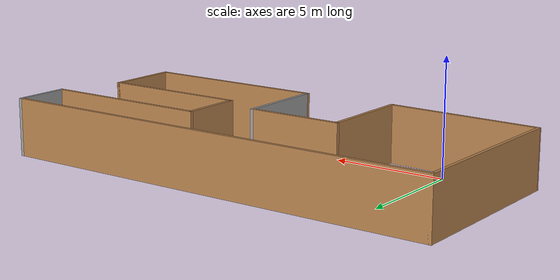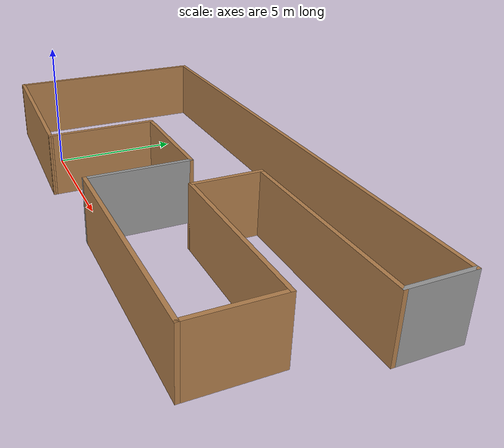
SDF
<?xml version='1.0'?>
<sdf version='1.6'>
  <model name='office'>
    <pose frame=''>6.28389 3.19889 0 0 -0 0</pose>
    <link name='Wall_0'>
      <collision name='Wall_0_Collision'>
        <geometry>
          <box>
            <size>8.25 0.15 2.5</size>
          </box>
        </geometry>
        <pose frame=''>0 0 1.25 0 -0 0</pose>
      </collision>
      <visual name='Wall_0_Visual'>
        <pose frame=''>0 0 1.25 0 -0 0</pose>
        <geometry>
          <box>
            <size>8.25 0.15 2.5</size>
          </box>
        </geometry>
        <material>
          <script>
            <uri>file://media/materials/scripts/gazebo.material</uri>
            <name>Gazebo/Wood</name>
          </script>
          <ambient>1 1 1 1</ambient>
        </material>
        <meta>
          <layer>0</layer>
        </meta>
      </visual>
      <pose frame=''>-9.92389 0.10111 0 0 -0 1.5708</pose>
    </link>
    <link name='Wall_1'>
      <collision name='Wall_1_Collision'>
        <geometry>
          <box>
            <size>20 0.15 2.5</size>
          </box>
        </geometry>
        <pose frame=''>0 0 1.25 0 -0 0</pose>
      </collision>
      <visual name='Wall_1_Visual'>
        <pose frame=''>0 0 1.25 0 -0 0</pose>
        <geometry>
          <box>
            <size>20 0.15 2.5</size>
          </box>
        </geometry>
        <material>
          <script>
            <uri>file://media/materials/scripts/gazebo.material</uri>
            <name>Gazebo/Wood</name>
          </script>
          <ambient>1 1 1 1</ambient>
        </material>
        <meta>
          <layer>0</layer>
        </meta>
      </visual>
      <pose frame=''>0.001111 4.15111 0 0 -0 0</pose>
    </link>
    <link name='Wall_10'>
      <collision name='Wall_10_Collision'>
        <geometry>
          <box>
            <size>4.25 0.15 2.5</size>
          </box>
        </geometry>
        <pose frame=''>0 0 1.25 0 -0 0</pose>
      </collision>
      <visual name='Wall_10_Visual'>
        <pose frame=''>0 0 1.25 0 -0 0</pose>
        <geometry>
          <box>
            <size>4.25 0.15 2.5</size>
          </box>
        </geometry>
        <material>
          <script>
            <uri>file://media/materials/scripts/gazebo.material</uri>
            <name>Gazebo/Wood</name>
          </script>
          <ambient>1 1 1 1</ambient>
        </material>
        <meta>
          <layer>0</layer>
        </meta>
      </visual>
      <pose frame=''>-3.27389 -2.09889 0 0 0 -1.5708</pose>
    </link>
    <link name='Wall_11'>
      <collision name='Wall_11_Collision'>
        <geometry>
          <box>
            <size>6.80301 0.15 2.5</size>
          </box>
        </geometry>
        <pose frame=''>0 0 1.25 0 -0 0</pose>
      </collision>
      <visual name='Wall_11_Visual'>
        <pose frame=''>0 0 1.25 0 -0 0</pose>
        <geometry>
          <box>
            <size>6.80301 0.15 2.5</size>
          </box>
        </geometry>
        <material>
          <script>
            <uri>file://media/materials/scripts/gazebo.material</uri>
            <name>Gazebo/Wood</name>
          </script>
          <ambient>1 1 1 1</ambient>
        </material>
        <meta>
          <layer>0</layer>
        </meta>
      </visual>
      <pose frame=''>-6.59889 -4.04889 0 0 -0 3.11153</pose>
    </link>
    <link name='Wall_2'>
      <collision name='Wall_2_Collision'>
        <geometry>
          <box>
            <size>2.5 0.15 2.5</size>
          </box>
        </geometry>
        <pose frame=''>0 0 1.25 0 -0 0</pose>
      </collision>
      <visual name='Wall_2_Visual'>
        <pose frame=''>0 0 1.25 0 -0 0</pose>
        <geometry>
          <box>
            <size>2.5 0.15 2.5</size>
          </box>
        </geometry>
        <material>
          <script>
            <uri>file://media/materials/scripts/gazebo.material</uri>
            <name>Gazebo/Grey</name>
          </script>
          <ambient>1 1 1 1</ambient>
        </material>
        <meta>
          <layer>0</layer>
        </meta>
      </visual>
      <pose frame=''>9.92611 2.97611 0 0 0 -1.5708</pose>
    </link>
    <link name='Wall_3'>
      <collision name='Wall_3_Collision'>
        <geometry>
          <box>
            <size>7.5 0.15 2.5</size>
          </box>
        </geometry>
        <pose frame=''>0 0 1.25 0 -0 0</pose>
      </collision>
      <visual name='Wall_3_Visual'>
        <pose frame=''>0 0 1.25 0 -0 0</pose>
        <geometry>
          <box>
            <size>7.5 0.15 2.5</size>
          </box>
        </geometry>
        <material>
          <script>
            <uri>file://media/materials/scripts/gazebo.material</uri>
            <name>Gazebo/Wood</name>
          </script>
          <ambient>1 1 1 1</ambient>
        </material>
        <meta>
          <layer>0</layer>
        </meta>
      </visual>
      <pose frame=''>6.25111 1.80111 0 0 -0 3.14159</pose>
    </link>
    <link name='Wall_4'>
      <collision name='Wall_4_Collision'>
        <geometry>
          <box>
            <size>2.75 0.15 2.5</size>
          </box>
        </geometry>
        <pose frame=''>0 0 1.25 0 -0 0</pose>
      </collision>
      <visual name='Wall_4_Visual'>
        <pose frame=''>0 0 1.25 0 -0 0</pose>
        <geometry>
          <box>
            <size>2.75 0.15 2.5</size>
          </box>
        </geometry>
        <material>
          <script>
            <uri>file://media/materials/scripts/gazebo.material</uri>
            <name>Gazebo/Wood</name>
          </script>
          <ambient>1 1 1 1</ambient>
        </material>
        <meta>
          <layer>0</layer>
        </meta>
      </visual>
      <pose frame=''>2.57611 0.50111 0 0 0 -1.5708</pose>
    </link>
    <link name='Wall_5'>
      <collision name='Wall_5_Collision'>
        <geometry>
          <box>
            <size>6.5 0.15 2.5</size>
          </box>
        </geometry>
        <pose frame=''>0 0 1.25 0 -0 0</pose>
      </collision>
      <visual name='Wall_5_Visual'>
        <pose frame=''>0 0 1.25 0 -0 0</pose>
        <geometry>
          <box>
            <size>6.5 0.15 2.5</size>
          </box>
        </geometry>
        <material>
          <script>
            <uri>file://media/materials/scripts/gazebo.material</uri>
            <name>Gazebo/Wood</name>
          </script>
          <ambient>1 1 1 1</ambient>
        </material>
        <meta>
          <layer>0</layer>
        </meta>
      </visual>
      <pose frame=''>5.75111 -0.79889 0 0 -0 0</pose>
    </link>
    <link name='Wall_6'>
      <collision name='Wall_6_Collision'>
        <geometry>
          <box>
            <size>3.25 0.15 2.5</size>
          </box>
        </geometry>
        <pose frame=''>0 0 1.25 0 -0 0</pose>
      </collision>
      <visual name='Wall_6_Visual'>
        <pose frame=''>0 0 1.25 0 -0 0</pose>
        <geometry>
          <box>
            <size>3.25 0.15 2.5</size>
          </box>
        </geometry>
        <material>
          <script>
            <uri>file://media/materials/scripts/gazebo.material</uri>
            <name>Gazebo/Wood</name>
          </script>
          <ambient>1 1 1 1</ambient>
        </material>
        <meta>
          <layer>0</layer>
        </meta>
      </visual>
      <pose frame=''>8.92611 -2.34889 0 0 0 -1.5708</pose>
    </link>
    <link name='Wall_7'>
      <collision name='Wall_7_Collision'>
        <geometry>
          <box>
            <size>8.25 0.15 2.5</size>
          </box>
        </geometry>
        <pose frame=''>0 0 1.25 0 -0 0</pose>
      </collision>
      <visual name='Wall_7_Visual'>
        <pose frame=''>0 0 1.25 0 -0 0</pose>
        <geometry>
          <box>
            <size>8.25 0.15 2.5</size>
          </box>
        </geometry>
        <material>
          <script>
            <uri>file://media/materials/scripts/gazebo.material</uri>
            <name>Gazebo/Wood</name>
          </script>
          <ambient>1 1 1 1</ambient>
        </material>
        <meta>
          <layer>0</layer>
        </meta>
      </visual>
      <pose frame=''>4.87611 -3.89889 0 0 -0 3.14159</pose>
    </link>
    <link name='Wall_8'>
      <collision name='Wall_8_Collision'>
        <geometry>
          <box>
            <size>4 0.15 2.5</size>
          </box>
        </geometry>
        <pose frame=''>0 0 1.25 0 -0 0</pose>
      </collision>
      <visual name='Wall_8_Visual'>
        <pose frame=''>0 0 1.25 0 -0 0</pose>
        <geometry>
          <box>
            <size>4 0.15 2.5</size>
          </box>
        </geometry>
        <material>
          <script>
            <uri>file://media/materials/scripts/gazebo.material</uri>
            <name>Gazebo/Grey</name>
          </script>
          <ambient>1 1 1 1</ambient>
        </material>
        <meta>
          <layer>0</layer>
        </meta>
      </visual>
      <pose frame=''>0.826111 -1.97389 0 0 -0 1.5708</pose>
    </link>
    <link name='Wall_9'>
      <collision name='Wall_9_Collision'>
        <geometry>
          <box>
            <size>4.25 0.15 2.5</size>
          </box>
        </geometry>
        <pose frame=''>0 0 1.25 0 -0 0</pose>
      </collision>
      <visual name='Wall_9_Visual'>
        <pose frame=''>0 0 1.25 0 -0 0</pose>
        <geometry>
          <box>
            <size>4.25 0.15 2.5</size>
          </box>
        </geometry>
        <material>
          <script>
            <uri>file://media/materials/scripts/gazebo.material</uri>
            <name>Gazebo/Wood</name>
          </script>
          <ambient>1 1 1 1</ambient>
        </material>
        <meta>
          <layer>0</layer>
        </meta>
      </visual>
      <pose frame=''>-1.22389 -0.04889 0 0 -0 3.14159</pose>
    </link>
    <static>1</static>
  </model>
</sdf>
